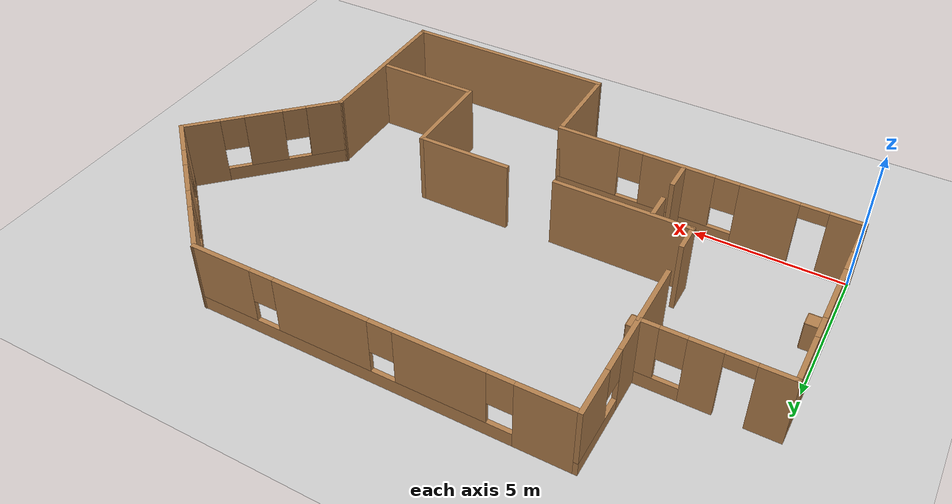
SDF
<sdf version="1.6">
 <world name="default">
  <light name="sun" type="directional">
   <pose>0 0 10 0 -0 0</pose>
   <diffuse>0.8 0.8 0.8 1</diffuse>
   <specular>0.2 0.2 0.2 1</specular>
   <attenuation>
    <range>1000</range>
    <constant>0.9</constant>
    <linear>0.01</linear>
    <quadratic>0.001</quadratic>
   </attenuation>
   <direction>-0.5 0.1 -0.9</direction>
  </light>
  <model name="ground_plane">
   <static>1</static>
   <link name="link">
    <collision name="collision">
     <geometry><plane><normal>0 0 1</normal><size>100 100</size></plane></geometry>
     <surface><friction><ode><mu>100</mu><mu2>50</mu2></ode></friction></surface>
    </collision>
    <visual name="visual">
     <cast_shadows>0</cast_shadows>
     <geometry><plane><normal>0 0 1</normal><size>100 100</size></plane></geometry>
     <material>
      <script><uri>file://media/materials/scripts/gazebo.material</uri><name>Gazebo/Grey</name></script>
     </material>
    </visual>
   </link>
  </model>
  <gravity>0 0 -9.8</gravity>
  <magnetic_field>6e-06 2.3e-05 -4.2e-05</magnetic_field>
  <atmosphere type="adiabatic"/>
  <physics name="default_physics" default="0" type="ode">
   <max_step_size>0.001</max_step_size>
   <real_time_factor>1</real_time_factor>
   <real_time_update_rate>1000</real_time_update_rate>
  </physics>
  <scene><ambient>0.4 0.4 0.4 1</ambient><background>0.7 0.7 0.7 1</background><shadows>1</shadows></scene>
  <spherical_coordinates>
   <surface_model>EARTH_WGS84</surface_model>
   <latitude_deg>0</latitude_deg>
   <longitude_deg>0</longitude_deg>
   <elevation>0</elevation>
   <heading_deg>0</heading_deg>
  </spherical_coordinates>
  <model name="buildingnl">
   <pose>10.5222 3.74051 0 0 -0 0</pose>
   <link name="Wall_0">
    <pose>-5.52221 -3.74051 0 0 -0 0</pose>
    <visual name="Wall_0_Visual_0">
     <pose>-4.51122 0 1.25 0 -0 0</pose>
     <geometry><box><size>1.12755 0.15 2.5</size></box></geometry>
     <material>
      <script><uri>file://media/materials/scripts/gazebo.material</uri><name>Gazebo/Wood</name></script>
      <ambient>1 1 1 1</ambient>
     </material>
     <meta><layer>0</layer></meta>
    </visual>
    <collision name="Wall_0_Collision_0">
     <geometry><box><size>1.12755 0.15 2.5</size></box></geometry>
     <pose>-4.51122 0 1.25 0 -0 0</pose>
    </collision>
    <visual name="Wall_0_Visual_1">
     <pose>-2.10052 0 1.25 0 -0 0</pose>
     <geometry><box><size>1.89386 0.15 2.5</size></box></geometry>
     <material>
      <script><uri>file://media/materials/scripts/gazebo.material</uri><name>Gazebo/Wood</name></script>
      <ambient>1 1 1 1</ambient>
     </material>
     <meta><layer>0</layer></meta>
    </visual>
    <collision name="Wall_0_Collision_1">
     <geometry><box><size>1.89386 0.15 2.5</size></box></geometry>
     <pose>-2.10052 0 1.25 0 -0 0</pose>
    </collision>
    <visual name="Wall_0_Visual_2">
     <pose>1.9607 0 0.25 0 -0 0</pose>
     <geometry><box><size>6.22859 0.15 0.5</size></box></geometry>
     <material>
      <script><uri>file://media/materials/scripts/gazebo.material</uri><name>Gazebo/Wood</name></script>
      <ambient>1 1 1 1</ambient>
     </material>
     <meta><layer>0</layer></meta>
    </visual>
    <collision name="Wall_0_Collision_2">
     <geometry><box><size>6.22859 0.15 0.5</size></box></geometry>
     <pose>1.9607 0 0.25 0 -0 0</pose>
    </collision>
    <visual name="Wall_0_Visual_3">
     <pose>0.855816 0 1.5 0 -0 0</pose>
     <geometry><box><size>2.41881 0.15 2</size></box></geometry>
     <material>
      <script><uri>file://media/materials/scripts/gazebo.material</uri><name>Gazebo/Wood</name></script>
      <ambient>1 1 1 1</ambient>
     </material>
     <meta><layer>0</layer></meta>
    </visual>
    <collision name="Wall_0_Collision_3">
     <geometry><box><size>2.41881 0.15 2</size></box></geometry>
     <pose>0.855816 0 1.5 0 -0 0</pose>
    </collision>
    <visual name="Wall_0_Visual_4">
     <pose>3.97011 0 1.5 0 -0 0</pose>
     <geometry><box><size>2.20978 0.15 2</size></box></geometry>
     <material>
      <script><uri>file://media/materials/scripts/gazebo.material</uri><name>Gazebo/Wood</name></script>
      <ambient>1 1 1 1</ambient>
     </material>
     <meta><layer>0</layer></meta>
    </visual>
    <collision name="Wall_0_Collision_4">
     <geometry><box><size>2.20978 0.15 2</size></box></geometry>
     <pose>3.97011 0 1.5 0 -0 0</pose>
    </collision>
    <visual name="Wall_0_Visual_5">
     <pose>-0.753592 0 1.9 0 -0 0</pose>
     <geometry><box><size>0.8 0.15 1.2</size></box></geometry>
     <material>
      <script><uri>file://media/materials/scripts/gazebo.material</uri><name>Gazebo/Wood</name></script>
      <ambient>1 1 1 1</ambient>
     </material>
     <meta><layer>0</layer></meta>
    </visual>
    <collision name="Wall_0_Collision_5">
     <geometry><box><size>0.8 0.15 1.2</size></box></geometry>
     <pose>-0.753592 0 1.9 0 -0 0</pose>
    </collision>
    <visual name="Wall_0_Visual_6">
     <pose>2.46522 0 1.9 0 -0 0</pose>
     <geometry><box><size>0.8 0.15 1.2</size></box></geometry>
     <material>
      <script><uri>file://media/materials/scripts/gazebo.material</uri><name>Gazebo/Wood</name></script>
      <ambient>1 1 1 1</ambient>
     </material>
     <meta><layer>0</layer></meta>
    </visual>
    <collision name="Wall_0_Collision_6">
     <geometry><box><size>0.8 0.15 1.2</size></box></geometry>
     <pose>2.46522 0 1.9 0 -0 0</pose>
    </collision>
    <visual name="Wall_0_Visual_7">
     <pose>-3.49745 0 2.25 0 -0 0</pose>
     <geometry><box><size>0.9 0.15 0.5</size></box></geometry>
     <material>
      <script><uri>file://media/materials/scripts/gazebo.material</uri><name>Gazebo/Wood</name></script>
      <ambient>1 1 1 1</ambient>
     </material>
     <meta><layer>0</layer></meta>
    </visual>
    <collision name="Wall_0_Collision_7">
     <geometry><box><size>0.9 0.15 0.5</size></box></geometry>
     <pose>-3.49745 0 2.25 0 -0 0</pose>
    </collision>
   </link>
   <link name="Wall_10">
    <collision name="Wall_10_Collision">
     <geometry><box><size>3.15 0.15 2.5</size></box></geometry>
     <pose>0 0 1.25 0 -0 0</pose>
    </collision>
    <visual name="Wall_10_Visual">
     <pose>0 0 1.25 0 -0 0</pose>
     <geometry><box><size>3.15 0.15 2.5</size></box></geometry>
     <material>
      <script><uri>file://media/materials/scripts/gazebo.material</uri><name>Gazebo/Wood</name></script>
      <ambient>1 1 1 1</ambient>
     </material>
     <meta><layer>0</layer></meta>
    </visual>
    <pose>-0.522209 -5.24051 0 0 -0 1.5708</pose>
   </link>
   <link name="Wall_14">
    <collision name="Wall_14_Collision">
     <geometry><box><size>3.25 0.15 2.5</size></box></geometry>
     <pose>0 0 1.25 0 -0 0</pose>
    </collision>
    <visual name="Wall_14_Visual">
     <pose>0 0 1.25 0 -0 0</pose>
     <geometry><box><size>3.25 0.15 2.5</size></box></geometry>
     <material>
      <script><uri>file://media/materials/scripts/gazebo.material</uri><name>Gazebo/Wood</name></script>
      <ambient>1 1 1 1</ambient>
     </material>
     <meta><layer>0</layer></meta>
    </visual>
    <pose>3.17779 -2.54051 0 0 0 -1.5708</pose>
   </link>
   <link name="Wall_15">
    <collision name="Wall_15_Collision">
     <geometry><box><size>3.5 0.15 2.5</size></box></geometry>
     <pose>0 0 1.25 0 -0 0</pose>
    </collision>
    <visual name="Wall_15_Visual">
     <pose>0 0 1.25 0 -0 0</pose>
     <geometry><box><size>3.5 0.15 2.5</size></box></geometry>
     <material>
      <script><uri>file://media/materials/scripts/gazebo.material</uri><name>Gazebo/Wood</name></script>
      <ambient>1 1 1 1</ambient>
     </material>
     <meta><layer>0</layer></meta>
    </visual>
    <pose>4.85279 -4.09051 0 0 -0 0</pose>
   </link>
   <link name="Wall_19">
    <collision name="Wall_19_Collision">
     <geometry><box><size>3.25 0.15 2.5</size></box></geometry>
     <pose>0 0 1.25 0 -0 0</pose>
    </collision>
    <visual name="Wall_19_Visual">
     <pose>0 0 1.25 0 -0 0</pose>
     <geometry><box><size>3.25 0.15 2.5</size></box></geometry>
     <material>
      <script><uri>file://media/materials/scripts/gazebo.material</uri><name>Gazebo/Wood</name></script>
      <ambient>1 1 1 1</ambient>
     </material>
     <meta><layer>0</layer></meta>
    </visual>
    <pose>1.62779 -0.990514 0 0 -0 3.14159</pose>
   </link>
   <link name="Wall_2">
    <pose>-10.5222 -0.315514 0 0 -0 1.5708</pose>
    <visual name="Wall_2_Visual_0">
     <pose>-2.76767 0 1.25 0 -0 0</pose>
     <geometry><box><size>1.46466 0.15 2.5</size></box></geometry>
     <material>
      <script><uri>file://media/materials/scripts/gazebo.material</uri><name>Gazebo/Wood</name></script>
      <ambient>1 1 1 1</ambient>
     </material>
     <meta><layer>0</layer></meta>
    </visual>
    <collision name="Wall_2_Collision_0">
     <geometry><box><size>1.46466 0.15 2.5</size></box></geometry>
     <pose>-2.76767 0 1.25 0 -0 0</pose>
    </collision>
    <visual name="Wall_2_Visual_1">
     <pose>0.732328 0 0.25 0 -0 0</pose>
     <geometry><box><size>5.53534 0.15 0.5</size></box></geometry>
     <material>
      <script><uri>file://media/materials/scripts/gazebo.material</uri><name>Gazebo/Wood</name></script>
      <ambient>1 1 1 1</ambient>
     </material>
     <meta><layer>0</layer></meta>
    </visual>
    <collision name="Wall_2_Collision_1">
     <geometry><box><size>5.53534 0.15 0.5</size></box></geometry>
     <pose>0.732328 0 0.25 0 -0 0</pose>
    </collision>
    <visual name="Wall_2_Visual_2">
     <pose>-0.154144 0 1.5 0 -0 0</pose>
     <geometry><box><size>2.1624 0.15 2</size></box></geometry>
     <material>
      <script><uri>file://media/materials/scripts/gazebo.material</uri><name>Gazebo/Wood</name></script>
      <ambient>1 1 1 1</ambient>
     </material>
     <meta><layer>0</layer></meta>
    </visual>
    <collision name="Wall_2_Collision_2">
     <geometry><box><size>2.1624 0.15 2</size></box></geometry>
     <pose>-0.154144 0 1.5 0 -0 0</pose>
    </collision>
    <visual name="Wall_2_Visual_3">
     <pose>2.61353 0 1.5 0 -0 0</pose>
     <geometry><box><size>1.77294 0.15 2</size></box></geometry>
     <material>
      <script><uri>file://media/materials/scripts/gazebo.material</uri><name>Gazebo/Wood</name></script>
      <ambient>1 1 1 1</ambient>
     </material>
     <meta><layer>0</layer></meta>
    </visual>
    <collision name="Wall_2_Collision_3">
     <geometry><box><size>1.77294 0.15 2</size></box></geometry>
     <pose>2.61353 0 1.5 0 -0 0</pose>
    </collision>
    <visual name="Wall_2_Visual_4">
     <pose>-1.63534 0 1.9 0 -0 0</pose>
     <geometry><box><size>0.8 0.15 1.2</size></box></geometry>
     <material>
      <script><uri>file://media/materials/scripts/gazebo.material</uri><name>Gazebo/Wood</name></script>
      <ambient>1 1 1 1</ambient>
     </material>
     <meta><layer>0</layer></meta>
    </visual>
    <collision name="Wall_2_Collision_4">
     <geometry><box><size>0.8 0.15 1.2</size></box></geometry>
     <pose>-1.63534 0 1.9 0 -0 0</pose>
    </collision>
    <visual name="Wall_2_Visual_5">
     <pose>1.32706 0 1.9 0 -0 0</pose>
     <geometry><box><size>0.8 0.15 1.2</size></box></geometry>
     <material>
      <script><uri>file://media/materials/scripts/gazebo.material</uri><name>Gazebo/Wood</name></script>
      <ambient>1 1 1 1</ambient>
     </material>
     <meta><layer>0</layer></meta>
    </visual>
    <collision name="Wall_2_Collision_5">
     <geometry><box><size>0.8 0.15 1.2</size></box></geometry>
     <pose>1.32706 0 1.9 0 -0 0</pose>
    </collision>
   </link>
   <link name="Wall_21">
    <collision name="Wall_21_Collision">
     <geometry><box><size>2.25 0.15 2.5</size></box></geometry>
     <pose>0 0 1.25 0 -0 0</pose>
    </collision>
    <visual name="Wall_21_Visual">
     <pose>0 0 1.25 0 -0 0</pose>
     <geometry><box><size>2.25 0.15 2.5</size></box></geometry>
     <material>
      <script><uri>file://media/materials/scripts/gazebo.material</uri><name>Gazebo/Wood</name></script>
      <ambient>1 1 1 1</ambient>
     </material>
     <meta><layer>0</layer></meta>
    </visual>
    <pose>-6.17221 2.05949 0 0 0 -1.5708</pose>
   </link>
   <link name="Wall_23">
    <collision name="Wall_23_Collision">
     <geometry><box><size>4.62098 0.15 2.5</size></box></geometry>
     <pose>0 0 1.25 0 -0 0</pose>
    </collision>
    <visual name="Wall_23_Visual">
     <pose>0 0 1.25 0 -0 0</pose>
     <geometry><box><size>4.62098 0.15 2.5</size></box></geometry>
     <material>
      <script><uri>file://media/materials/scripts/gazebo.material</uri><name>Gazebo/Wood</name></script>
      <ambient>1 1 1 1</ambient>
     </material>
     <meta><layer>0</layer></meta>
    </visual>
    <pose>-3.85737 -1.07342 0 0 -0 3.14159</pose>
   </link>
   <link name="Wall_24">
    <collision name="Wall_24_Collision">
     <geometry><box><size>1 0.15 2.5</size></box></geometry>
     <pose>0 0 1.25 0 -0 0</pose>
    </collision>
    <visual name="Wall_24_Visual">
     <pose>0 0 1.25 0 -0 0</pose>
     <geometry><box><size>1 0.15 2.5</size></box></geometry>
     <material>
      <script><uri>file://media/materials/scripts/gazebo.material</uri><name>Gazebo/Wood</name></script>
      <ambient>1 1 1 1</ambient>
     </material>
     <meta><layer>0</layer></meta>
    </visual>
    <pose>-6.12311 -0.648424 0 0 -0 1.5708</pose>
   </link>
   <link name="Wall_26">
    <collision name="Wall_26_Collision">
     <geometry><box><size>1 0.15 2.5</size></box></geometry>
     <pose>0 0 1.25 0 -0 0</pose>
    </collision>
    <visual name="Wall_26_Visual">
     <pose>0 0 1.25 0 -0 0</pose>
     <geometry><box><size>1 0.15 2.5</size></box></geometry>
     <material>
      <script><uri>file://media/materials/scripts/gazebo.material</uri><name>Gazebo/Wood</name></script>
      <ambient>1 1 1 1</ambient>
     </material>
     <meta><layer>0</layer></meta>
    </visual>
    <pose>-4.84005 -1.49842 0 0 0 -1.5708</pose>
   </link>
   <link name="Wall_28">
    <collision name="Wall_28_Collision">
     <geometry><box><size>1 0.15 2.5</size></box></geometry>
     <pose>0 0 1.25 0 -0 0</pose>
    </collision>
    <visual name="Wall_28_Visual">
     <pose>0 0 1.25 0 -0 0</pose>
     <geometry><box><size>1 0.15 2.5</size></box></geometry>
     <material>
      <script><uri>file://media/materials/scripts/gazebo.material</uri><name>Gazebo/Wood</name></script>
      <ambient>1 1 1 1</ambient>
     </material>
     <meta><layer>0</layer></meta>
    </visual>
    <pose>-4.84005 -3.19842 0 0 0 -1.5708</pose>
   </link>
   <link name="Wall_3">
    <pose>-8.34721 3.10949 0 0 -0 0</pose>
    <visual name="Wall_3_Visual_0">
     <pose>-1.69779 0 1.25 0 -0 0</pose>
     <geometry><box><size>1.10442 0.15 2.5</size></box></geometry>
     <material>
      <script><uri>file://media/materials/scripts/gazebo.material</uri><name>Gazebo/Wood</name></script>
      <ambient>1 1 1 1</ambient>
     </material>
     <meta><layer>0</layer></meta>
    </visual>
    <collision name="Wall_3_Collision_0">
     <geometry><box><size>1.10442 0.15 2.5</size></box></geometry>
     <pose>-1.69779 0 1.25 0 -0 0</pose>
    </collision>
    <visual name="Wall_3_Visual_1">
     <pose>0.261634 0 1.25 0 -0 0</pose>
     <geometry><box><size>1.01443 0.15 2.5</size></box></geometry>
     <material>
      <script><uri>file://media/materials/scripts/gazebo.material</uri><name>Gazebo/Wood</name></script>
      <ambient>1 1 1 1</ambient>
     </material>
     <meta><layer>0</layer></meta>
    </visual>
    <collision name="Wall_3_Collision_1">
     <geometry><box><size>1.01443 0.15 2.5</size></box></geometry>
     <pose>0.261634 0 1.25 0 -0 0</pose>
    </collision>
    <visual name="Wall_3_Visual_2">
     <pose>1.50942 0 0.25 0 -0 0</pose>
     <geometry><box><size>1.48115 0.15 0.5</size></box></geometry>
     <material>
      <script><uri>file://media/materials/scripts/gazebo.material</uri><name>Gazebo/Wood</name></script>
      <ambient>1 1 1 1</ambient>
     </material>
     <meta><layer>0</layer></meta>
    </visual>
    <collision name="Wall_3_Collision_2">
     <geometry><box><size>1.48115 0.15 0.5</size></box></geometry>
     <pose>1.50942 0 0.25 0 -0 0</pose>
    </collision>
    <visual name="Wall_3_Visual_3">
     <pose>1.90942 0 1.5 0 -0 0</pose>
     <geometry><box><size>0.681152 0.15 2</size></box></geometry>
     <material>
      <script><uri>file://media/materials/scripts/gazebo.material</uri><name>Gazebo/Wood</name></script>
      <ambient>1 1 1 1</ambient>
     </material>
     <meta><layer>0</layer></meta>
    </visual>
    <collision name="Wall_3_Collision_3">
     <geometry><box><size>0.681152 0.15 2</size></box></geometry>
     <pose>1.90942 0 1.5 0 -0 0</pose>
    </collision>
    <visual name="Wall_3_Visual_4">
     <pose>1.16885 0 1.9 0 -0 0</pose>
     <geometry><box><size>0.8 0.15 1.2</size></box></geometry>
     <material>
      <script><uri>file://media/materials/scripts/gazebo.material</uri><name>Gazebo/Wood</name></script>
      <ambient>1 1 1 1</ambient>
     </material>
     <meta><layer>0</layer></meta>
    </visual>
    <collision name="Wall_3_Collision_4">
     <geometry><box><size>0.8 0.15 1.2</size></box></geometry>
     <pose>1.16885 0 1.9 0 -0 0</pose>
    </collision>
    <visual name="Wall_3_Visual_5">
     <pose>-0.695581 0 2.25 0 -0 0</pose>
     <geometry><box><size>0.9 0.15 0.5</size></box></geometry>
     <material>
      <script><uri>file://media/materials/scripts/gazebo.material</uri><name>Gazebo/Wood</name></script>
      <ambient>1 1 1 1</ambient>
     </material>
     <meta><layer>0</layer></meta>
    </visual>
    <collision name="Wall_3_Collision_5">
     <geometry><box><size>0.9 0.15 0.5</size></box></geometry>
     <pose>-0.695581 0 2.25 0 -0 0</pose>
    </collision>
   </link>
   <link name="Wall_4">
    <pose>-6.17221 4.90949 0 0 -0 1.5708</pose>
    <visual name="Wall_4_Visual_0">
     <pose>-1.21781 0 1.25 0 -0 0</pose>
     <geometry><box><size>1.31438 0.15 2.5</size></box></geometry>
     <material>
      <script><uri>file://media/materials/scripts/gazebo.material</uri><name>Gazebo/Wood</name></script>
      <ambient>1 1 1 1</ambient>
     </material>
     <meta><layer>0</layer></meta>
    </visual>
    <collision name="Wall_4_Collision_0">
     <geometry><box><size>1.31438 0.15 2.5</size></box></geometry>
     <pose>-1.21781 0 1.25 0 -0 0</pose>
    </collision>
    <visual name="Wall_4_Visual_1">
     <pose>0.657189 0 0.25 0 -0 0</pose>
     <geometry><box><size>2.43562 0.15 0.5</size></box></geometry>
     <material>
      <script><uri>file://media/materials/scripts/gazebo.material</uri><name>Gazebo/Wood</name></script>
      <ambient>1 1 1 1</ambient>
     </material>
     <meta><layer>0</layer></meta>
    </visual>
    <collision name="Wall_4_Collision_1">
     <geometry><box><size>2.43562 0.15 0.5</size></box></geometry>
     <pose>0.657189 0 0.25 0 -0 0</pose>
    </collision>
    <visual name="Wall_4_Visual_2">
     <pose>1.05719 0 1.5 0 -0 0</pose>
     <geometry><box><size>1.63562 0.15 2</size></box></geometry>
     <material>
      <script><uri>file://media/materials/scripts/gazebo.material</uri><name>Gazebo/Wood</name></script>
      <ambient>1 1 1 1</ambient>
     </material>
     <meta><layer>0</layer></meta>
    </visual>
    <collision name="Wall_4_Collision_2">
     <geometry><box><size>1.63562 0.15 2</size></box></geometry>
     <pose>1.05719 0 1.5 0 -0 0</pose>
    </collision>
    <visual name="Wall_4_Visual_3">
     <pose>-0.160623 0 1.9 0 -0 0</pose>
     <geometry><box><size>0.8 0.15 1.2</size></box></geometry>
     <material>
      <script><uri>file://media/materials/scripts/gazebo.material</uri><name>Gazebo/Wood</name></script>
      <ambient>1 1 1 1</ambient>
     </material>
     <meta><layer>0</layer></meta>
    </visual>
    <collision name="Wall_4_Collision_3">
     <geometry><box><size>0.8 0.15 1.2</size></box></geometry>
     <pose>-0.160623 0 1.9 0 -0 0</pose>
    </collision>
   </link>
   <link name="Wall_5">
    <pose>0.00279 6.70948 0 0 -0 0</pose>
    <visual name="Wall_5_Visual_0">
     <pose>-5.28638 0 1.25 0 -0 0</pose>
     <geometry><box><size>1.92725 0.15 2.5</size></box></geometry>
     <material>
      <script><uri>file://media/materials/scripts/gazebo.material</uri><name>Gazebo/Wood</name></script>
      <ambient>1 1 1 1</ambient>
     </material>
     <meta><layer>0</layer></meta>
    </visual>
    <collision name="Wall_5_Collision_0">
     <geometry><box><size>1.92725 0.15 2.5</size></box></geometry>
     <pose>-5.28638 0 1.25 0 -0 0</pose>
    </collision>
    <visual name="Wall_5_Visual_1">
     <pose>0.963624 0 0.25 0 -0 0</pose>
     <geometry><box><size>10.5728 0.15 0.5</size></box></geometry>
     <material>
      <script><uri>file://media/materials/scripts/gazebo.material</uri><name>Gazebo/Wood</name></script>
      <ambient>1 1 1 1</ambient>
     </material>
     <meta><layer>0</layer></meta>
    </visual>
    <collision name="Wall_5_Collision_1">
     <geometry><box><size>10.5728 0.15 0.5</size></box></geometry>
     <pose>0.963624 0 0.25 0 -0 0</pose>
    </collision>
    <visual name="Wall_5_Visual_2">
     <pose>-2.09242 0 1.5 0 -0 0</pose>
     <geometry><box><size>2.86067 0.15 2</size></box></geometry>
     <material>
      <script><uri>file://media/materials/scripts/gazebo.material</uri><name>Gazebo/Wood</name></script>
      <ambient>1 1 1 1</ambient>
     </material>
     <meta><layer>0</layer></meta>
    </visual>
    <collision name="Wall_5_Collision_2">
     <geometry><box><size>2.86067 0.15 2</size></box></geometry>
     <pose>-2.09242 0 1.5 0 -0 0</pose>
    </collision>
    <visual name="Wall_5_Visual_3">
     <pose>1.72916 0 1.5 0 -0 0</pose>
     <geometry><box><size>3.18249 0.15 2</size></box></geometry>
     <material>
      <script><uri>file://media/materials/scripts/gazebo.material</uri><name>Gazebo/Wood</name></script>
      <ambient>1 1 1 1</ambient>
     </material>
     <meta><layer>0</layer></meta>
    </visual>
    <collision name="Wall_5_Collision_3">
     <geometry><box><size>3.18249 0.15 2</size></box></geometry>
     <pose>1.72916 0 1.5 0 -0 0</pose>
    </collision>
    <visual name="Wall_5_Visual_4">
     <pose>5.1852 0 1.5 0 -0 0</pose>
     <geometry><box><size>2.1296 0.15 2</size></box></geometry>
     <material>
      <script><uri>file://media/materials/scripts/gazebo.material</uri><name>Gazebo/Wood</name></script>
      <ambient>1 1 1 1</ambient>
     </material>
     <meta><layer>0</layer></meta>
    </visual>
    <collision name="Wall_5_Collision_4">
     <geometry><box><size>2.1296 0.15 2</size></box></geometry>
     <pose>5.1852 0 1.5 0 -0 0</pose>
    </collision>
    <visual name="Wall_5_Visual_5">
     <pose>-3.92275 0 1.9 0 -0 0</pose>
     <geometry><box><size>0.8 0.15 1.2</size></box></geometry>
     <material>
      <script><uri>file://media/materials/scripts/gazebo.material</uri><name>Gazebo/Wood</name></script>
      <ambient>1 1 1 1</ambient>
     </material>
     <meta><layer>0</layer></meta>
    </visual>
    <collision name="Wall_5_Collision_5">
     <geometry><box><size>0.8 0.15 1.2</size></box></geometry>
     <pose>-3.92275 0 1.9 0 -0 0</pose>
    </collision>
    <visual name="Wall_5_Visual_6">
     <pose>-0.262083 0 1.9 0 -0 0</pose>
     <geometry><box><size>0.8 0.15 1.2</size></box></geometry>
     <material>
      <script><uri>file://media/materials/scripts/gazebo.material</uri><name>Gazebo/Wood</name></script>
      <ambient>1 1 1 1</ambient>
     </material>
     <meta><layer>0</layer></meta>
    </visual>
    <collision name="Wall_5_Collision_6">
     <geometry><box><size>0.8 0.15 1.2</size></box></geometry>
     <pose>-0.262083 0 1.9 0 -0 0</pose>
    </collision>
    <visual name="Wall_5_Visual_7">
     <pose>3.7204 0 1.9 0 -0 0</pose>
     <geometry><box><size>0.8 0.15 1.2</size></box></geometry>
     <material>
      <script><uri>file://media/materials/scripts/gazebo.material</uri><name>Gazebo/Wood</name></script>
      <ambient>1 1 1 1</ambient>
     </material>
     <meta><layer>0</layer></meta>
    </visual>
    <collision name="Wall_5_Collision_7">
     <geometry><box><size>0.8 0.15 1.2</size></box></geometry>
     <pose>3.7204 0 1.9 0 -0 0</pose>
    </collision>
   </link>
   <link name="Wall_6">
    <pose>8.33447 4.55281 0 0 0 -0.785398</pose>
    <visual name="Wall_6_Visual_0">
     <pose>-2.18213 0 1.25 0 -0 0</pose>
     <geometry><box><size>1.88575 0.15 2.5</size></box></geometry>
     <material>
      <script><uri>file://media/materials/scripts/gazebo.material</uri><name>Gazebo/Wood</name></script>
      <ambient>1 1 1 1</ambient>
     </material>
     <meta><layer>0</layer></meta>
    </visual>
    <collision name="Wall_6_Collision_0">
     <geometry><box><size>1.88575 0.15 2.5</size></box></geometry>
     <pose>-2.18213 0 1.25 0 -0 0</pose>
    </collision>
    <visual name="Wall_6_Visual_1">
     <pose>0.942874 0 0.25 0 -0 0</pose>
     <geometry><box><size>4.36425 0.15 0.5</size></box></geometry>
     <material>
      <script><uri>file://media/materials/scripts/gazebo.material</uri><name>Gazebo/Wood</name></script>
      <ambient>1 1 1 1</ambient>
     </material>
     <meta><layer>0</layer></meta>
    </visual>
    <collision name="Wall_6_Collision_1">
     <geometry><box><size>4.36425 0.15 0.5</size></box></geometry>
     <pose>0.942874 0 0.25 0 -0 0</pose>
    </collision>
    <visual name="Wall_6_Visual_2">
     <pose>0.227431 0 1.5 0 -0 0</pose>
     <geometry><box><size>1.33337 0.15 2</size></box></geometry>
     <material>
      <script><uri>file://media/materials/scripts/gazebo.material</uri><name>Gazebo/Wood</name></script>
      <ambient>1 1 1 1</ambient>
     </material>
     <meta><layer>0</layer></meta>
    </visual>
    <collision name="Wall_6_Collision_2">
     <geometry><box><size>1.33337 0.15 2</size></box></geometry>
     <pose>0.227431 0 1.5 0 -0 0</pose>
    </collision>
    <visual name="Wall_6_Visual_3">
     <pose>2.40956 0 1.5 0 -0 0</pose>
     <geometry><box><size>1.43088 0.15 2</size></box></geometry>
     <material>
      <script><uri>file://media/materials/scripts/gazebo.material</uri><name>Gazebo/Wood</name></script>
      <ambient>1 1 1 1</ambient>
     </material>
     <meta><layer>0</layer></meta>
    </visual>
    <collision name="Wall_6_Collision_3">
     <geometry><box><size>1.43088 0.15 2</size></box></geometry>
     <pose>2.40956 0 1.5 0 -0 0</pose>
    </collision>
    <visual name="Wall_6_Visual_4">
     <pose>-0.839252 0 1.9 0 -0 0</pose>
     <geometry><box><size>0.8 0.15 1.2</size></box></geometry>
     <material>
      <script><uri>file://media/materials/scripts/gazebo.material</uri><name>Gazebo/Wood</name></script>
      <ambient>1 1 1 1</ambient>
     </material>
     <meta><layer>0</layer></meta>
    </visual>
    <collision name="Wall_6_Collision_4">
     <geometry><box><size>0.8 0.15 1.2</size></box></geometry>
     <pose>-0.839252 0 1.9 0 -0 0</pose>
    </collision>
    <visual name="Wall_6_Visual_5">
     <pose>1.29411 0 1.9 0 -0 0</pose>
     <geometry><box><size>0.8 0.15 1.2</size></box></geometry>
     <material>
      <script><uri>file://media/materials/scripts/gazebo.material</uri><name>Gazebo/Wood</name></script>
      <ambient>1 1 1 1</ambient>
     </material>
     <meta><layer>0</layer></meta>
    </visual>
    <collision name="Wall_6_Collision_5">
     <geometry><box><size>0.8 0.15 1.2</size></box></geometry>
     <pose>1.29411 0 1.9 0 -0 0</pose>
    </collision>
   </link>
   <link name="Wall_7">
    <pose>8.59963 0.504624 0 0 0 -2.35619</pose>
    <visual name="Wall_7_Visual_0">
     <pose>-2.07683 0 1.25 0 -0 0</pose>
     <geometry><box><size>1.34634 0.15 2.5</size></box></geometry>
     <material>
      <script><uri>file://media/materials/scripts/gazebo.material</uri><name>Gazebo/Wood</name></script>
      <ambient>1 1 1 1</ambient>
     </material>
     <meta><layer>0</layer></meta>
    </visual>
    <collision name="Wall_7_Collision_0">
     <geometry><box><size>1.34634 0.15 2.5</size></box></geometry>
     <pose>-2.07683 0 1.25 0 -0 0</pose>
    </collision>
    <visual name="Wall_7_Visual_1">
     <pose>0.673172 0 0.25 0 -0 0</pose>
     <geometry><box><size>4.15366 0.15 0.5</size></box></geometry>
     <material>
      <script><uri>file://media/materials/scripts/gazebo.material</uri><name>Gazebo/Wood</name></script>
      <ambient>1 1 1 1</ambient>
     </material>
     <meta><layer>0</layer></meta>
    </visual>
    <collision name="Wall_7_Collision_1">
     <geometry><box><size>4.15366 0.15 0.5</size></box></geometry>
     <pose>0.673172 0 0.25 0 -0 0</pose>
    </collision>
    <visual name="Wall_7_Visual_2">
     <pose>0.034581 0 1.5 0 -0 0</pose>
     <geometry><box><size>1.27648 0.15 2</size></box></geometry>
     <material>
      <script><uri>file://media/materials/scripts/gazebo.material</uri><name>Gazebo/Wood</name></script>
      <ambient>1 1 1 1</ambient>
     </material>
     <meta><layer>0</layer></meta>
    </visual>
    <collision name="Wall_7_Collision_2">
     <geometry><box><size>1.27648 0.15 2</size></box></geometry>
     <pose>0.034581 0 1.5 0 -0 0</pose>
    </collision>
    <visual name="Wall_7_Visual_3">
     <pose>2.11141 0 1.5 0 -0 0</pose>
     <geometry><box><size>1.27718 0.15 2</size></box></geometry>
     <material>
      <script><uri>file://media/materials/scripts/gazebo.material</uri><name>Gazebo/Wood</name></script>
      <ambient>1 1 1 1</ambient>
     </material>
     <meta><layer>0</layer></meta>
    </visual>
    <collision name="Wall_7_Collision_3">
     <geometry><box><size>1.27718 0.15 2</size></box></geometry>
     <pose>2.11141 0 1.5 0 -0 0</pose>
    </collision>
    <visual name="Wall_7_Visual_4">
     <pose>-1.00366 0 1.9 0 -0 0</pose>
     <geometry><box><size>0.8 0.15 1.2</size></box></geometry>
     <material>
      <script><uri>file://media/materials/scripts/gazebo.material</uri><name>Gazebo/Wood</name></script>
      <ambient>1 1 1 1</ambient>
     </material>
     <meta><layer>0</layer></meta>
    </visual>
    <collision name="Wall_7_Collision_4">
     <geometry><box><size>0.8 0.15 1.2</size></box></geometry>
     <pose>-1.00366 0 1.9 0 -0 0</pose>
    </collision>
    <visual name="Wall_7_Visual_5">
     <pose>1.07282 0 1.9 0 -0 0</pose>
     <geometry><box><size>0.8 0.15 1.2</size></box></geometry>
     <material>
      <script><uri>file://media/materials/scripts/gazebo.material</uri><name>Gazebo/Wood</name></script>
      <ambient>1 1 1 1</ambient>
     </material>
     <meta><layer>0</layer></meta>
    </visual>
    <collision name="Wall_7_Collision_5">
     <geometry><box><size>0.8 0.15 1.2</size></box></geometry>
     <pose>1.07282 0 1.9 0 -0 0</pose>
    </collision>
   </link>
   <link name="Wall_8">
    <collision name="Wall_8_Collision">
     <geometry><box><size>5.5 0.15 2.5</size></box></geometry>
     <pose>0 0 1.25 0 -0 0</pose>
    </collision>
    <visual name="Wall_8_Visual">
     <pose>0 0 1.25 0 -0 0</pose>
     <geometry><box><size>5.5 0.15 2.5</size></box></geometry>
     <material>
      <script><uri>file://media/materials/scripts/gazebo.material</uri><name>Gazebo/Wood</name></script>
      <ambient>1 1 1 1</ambient>
     </material>
     <meta><layer>0</layer></meta>
    </visual>
    <pose>6.70812 -4.06189 0 0 0 -1.5708</pose>
   </link>
   <link name="Wall_9">
    <collision name="Wall_9_Collision">
     <geometry><box><size>7.38033 0.15 2.5</size></box></geometry>
     <pose>0 0 1.25 0 -0 0</pose>
    </collision>
    <visual name="Wall_9_Visual">
     <pose>0 0 1.25 0 -0 0</pose>
     <geometry><box><size>7.38033 0.15 2.5</size></box></geometry>
     <material>
      <script><uri>file://media/materials/scripts/gazebo.material</uri><name>Gazebo/Wood</name></script>
      <ambient>1 1 1 1</ambient>
     </material>
     <meta><layer>0</layer></meta>
    </visual>
    <pose>3.09295 -6.7387 0 0 0 -3.14109</pose>
   </link>
   <static>1</static>
  </model>
  <model name="bookshelf">
   <static>1</static>
   <link name="link">
    <inertial><mass>1</mass></inertial>
    <collision name="back">
     <pose>0 0.005 0.6 0 -0 0</pose>
     <geometry><box><size>0.9 0.01 1.2</size></box></geometry>
    </collision>
    <visual name="visual1">
     <pose>0 0.005 0.6 0 -0 0</pose>
     <geometry><box><size>0.9 0.01 1.2</size></box></geometry>
     <material>
      <script><uri>file://media/materials/scripts/gazebo.material</uri><name>Gazebo/Wood</name></script>
     </material>
    </visual>
    <collision name="left_side">
     <pose>0.45 -0.195 0.6 0 -0 0</pose>
     <geometry><box><size>0.02 0.4 1.2</size></box></geometry>
    </collision>
    <visual name="visual2">
     <pose>0.45 -0.195 0.6 0 -0 0</pose>
     <geometry><box><size>0.02 0.4 1.2</size></box></geometry>
     <material>
      <script><uri>file://media/materials/scripts/gazebo.material</uri><name>Gazebo/Wood</name></script>
     </material>
    </visual>
    <collision name="right_side">
     <pose>-0.45 -0.195 0.6 0 -0 0</pose>
     <geometry><box><size>0.02 0.4 1.2</size></box></geometry>
    </collision>
    <visual name="visual3">
     <pose>-0.45 -0.195 0.6 0 -0 0</pose>
     <geometry><box><size>0.02 0.4 1.2</size></box></geometry>
     <material>
      <script><uri>file://media/materials/scripts/gazebo.material</uri><name>Gazebo/Wood</name></script>
     </material>
    </visual>
    <collision name="bottom">
     <pose>0 -0.195 0.03 0 -0 0</pose>
     <geometry><box><size>0.88 0.4 0.06</size></box></geometry>
    </collision>
    <visual name="visual4">
     <pose>0 -0.195 0.03 0 -0 0</pose>
     <geometry><box><size>0.88 0.4 0.06</size></box></geometry>
     <material>
      <script><uri>file://media/materials/scripts/gazebo.material</uri><name>Gazebo/Wood</name></script>
     </material>
    </visual>
    <collision name="top">
     <pose>0 -0.195 1.19 0 -0 0</pose>
     <geometry><box><size>0.88 0.4 0.02</size></box></geometry>
    </collision>
    <visual name="visual5">
     <pose>0 -0.195 1.19 0 -0 0</pose>
     <geometry><box><size>0.88 0.4 0.02</size></box></geometry>
     <material>
      <script><uri>file://media/materials/scripts/gazebo.material</uri><name>Gazebo/Wood</name></script>
     </material>
    </visual>
    <collision name="low_shelf">
     <pose>0 -0.195 0.43 0 -0 0</pose>
     <geometry><box><size>0.88 0.4 0.02</size></box></geometry>
    </collision>
    <visual name="visual6">
     <pose>0 -0.195 0.43 0 -0 0</pose>
     <geometry><box><size>0.88 0.4 0.02</size></box></geometry>
     <material>
      <script><uri>file://media/materials/scripts/gazebo.material</uri><name>Gazebo/Wood</name></script>
     </material>
    </visual>
    <collision name="high_shelf">
     <pose>0 -0.195 0.8 0 -0 0</pose>
     <geometry><box><size>0.88 0.4 0.02</size></box></geometry>
    </collision>
    <visual name="visual7">
     <pose>0 -0.195 0.8 0 -0 0</pose>
     <geometry><box><size>0.88 0.4 0.02</size></box></geometry>
     <material>
      <script><uri>file://media/materials/scripts/gazebo.material</uri><name>Gazebo/Wood</name></script>
     </material>
    </visual>
   </link>
   <pose>15.6374 10.3638 0 0 -0 0</pose>
  </model>
  <model name="trisphere_cycle">
   <link name="frame">
    <pose>-0.408559 0 0.385023 0 -0.522021 0</pose>
    <inertial>
     <mass>10</mass>
     <inertia><ixx>0.228</ixx><iyy>0.743521</iyy><izz>0.965521</izz><ixy>0</ixy><ixz>0</ixz><iyz>0</iyz></inertia>
    </inertial>
    <collision name="axle_collision">
     <pose>-0.471335 0 0 1.5708 -0 0</pose>
     <geometry><cylinder><length>1.03923</length><radius>0.03</radius></cylinder></geometry>
    </collision>
    <visual name="axle_visual">
     <pose>-0.471335 0 0 1.5708 -0 0</pose>
     <geometry><cylinder><length>1.03923</length><radius>0.03</radius></cylinder></geometry>
     <material>
      <script><uri>file://media/materials/scripts/gazebo.material</uri><name>Gazebo/Grey</name></script>
     </material>
    </visual>
    <collision name="frame_left_collision">
     <pose>0 0.171552 0 -2.79253 1.57079 3.14159</pose>
     <geometry><cylinder><length>1.00317</length><radius>0.03</radius></cylinder></geometry>
    </collision>
    <visual name="frame_left_visual">
     <pose>0 0.171552 0 -2.79253 1.57079 3.14159</pose>
     <geometry><cylinder><length>1.00317</length><radius>0.03</radius></cylinder></geometry>
     <material>
      <script><uri>file://media/materials/scripts/gazebo.material</uri><name>Gazebo/Grey</name></script>
     </material>
    </visual>
    <collision name="frame_right_collision">
     <pose>0 -0.171552 0 2.79253 1.57079 -3.14159</pose>
     <geometry><cylinder><length>1.00317</length><radius>0.03</radius></cylinder></geometry>
    </collision>
    <visual name="frame_right_visual">
     <pose>0 -0.171552 0 2.79253 1.57079 -3.14159</pose>
     <geometry><cylinder><length>1.00317</length><radius>0.03</radius></cylinder></geometry>
     <material>
      <script><uri>file://media/materials/scripts/gazebo.material</uri><name>Gazebo/Grey</name></script>
     </material>
    </visual>
   </link>
   <link name="fork">
    <pose>0.041441 0 0.385023 0 -0.174533 0</pose>
    <inertial>
     <mass>3</mass>
     <inertia>
      <ixx>0.158203</ixx>
      <iyy>0.0583594</iyy>
      <izz>0.102656</izz>
      <ixy>0</ixy>
      <ixz>0</ixz>
      <iyz>0</iyz>
     </inertia>
    </inertial>
    <collision name="handlebars_collision">
     <pose>0 0 0.397748 1.5708 -0 0</pose>
     <geometry><cylinder><length>0.636396</length><radius>0.0375</radius></cylinder></geometry>
    </collision>
    <visual name="handlebars_visual">
     <pose>0 0 0.397748 1.5708 -0 0</pose>
     <geometry><cylinder><length>0.636396</length><radius>0.0375</radius></cylinder></geometry>
     <material>
      <script><uri>file://media/materials/scripts/gazebo.material</uri><name>Gazebo/Grey</name></script>
     </material>
    </visual>
    <collision name="headtube_collision">
     <pose>0 0 0.238649 0 -0 0</pose>
     <geometry><cylinder><length>0.318198</length><radius>0.0375</radius></cylinder></geometry>
    </collision>
    <visual name="headtube_visual">
     <pose>0 0 0.238649 0 -0 0</pose>
     <geometry><cylinder><length>0.318198</length><radius>0.0375</radius></cylinder></geometry>
     <material>
      <script><uri>file://media/materials/scripts/gazebo.material</uri><name>Gazebo/Grey</name></script>
     </material>
    </visual>
    <collision name="spindle_collision">
     <pose>0 0 -0.238649 1.5708 -0 0</pose>
     <geometry><cylinder><length>0.636396</length><radius>0.015</radius></cylinder></geometry>
    </collision>
    <visual name="spindle_visual">
     <pose>0 0 -0.238649 1.5708 -0 0</pose>
     <geometry><cylinder><length>0.636396</length><radius>0.015</radius></cylinder></geometry>
     <material>
      <script><uri>file://media/materials/scripts/gazebo.material</uri><name>Gazebo/Grey</name></script>
     </material>
    </visual>
    <collision name="fork_left_collision">
     <pose>0 0.159099 -0.07955 0.785398 -0 0</pose>
     <geometry><cylinder><length>0.45</length><radius>0.0375</radius></cylinder></geometry>
    </collision>
    <visual name="fork_left_visual">
     <pose>0 0.159099 -0.07955 0.785398 -0 0</pose>
     <geometry><cylinder><length>0.45</length><radius>0.0375</radius></cylinder></geometry>
     <material>
      <script><uri>file://media/materials/scripts/gazebo.material</uri><name>Gazebo/Grey</name></script>
     </material>
    </visual>
    <collision name="fork_right_collision">
     <pose>0 -0.159099 -0.07955 -0.785398 0 0</pose>
     <geometry><cylinder><length>0.45</length><radius>0.0375</radius></cylinder></geometry>
    </collision>
    <visual name="fork_right_visual">
     <pose>0 -0.159099 -0.07955 -0.785398 0 0</pose>
     <geometry><cylinder><length>0.45</length><radius>0.0375</radius></cylinder></geometry>
     <material>
      <script><uri>file://media/materials/scripts/gazebo.material</uri><name>Gazebo/Grey</name></script>
     </material>
    </visual>
   </link>
   <link name="wheel_front">
    <pose>0.082882 0 0.15 0 -0 0</pose>
    <inertial>
     <mass>0.5</mass>
     <inertia><ixx>0.0045</ixx><iyy>0.0045</iyy><izz>0.0045</izz><ixy>0</ixy><ixz>0</ixz><iyz>0</iyz></inertia>
    </inertial>
    <collision name="collision">
     <geometry><sphere><radius>0.15</radius></sphere></geometry>
     <surface><contact><ode><kp>1e+08</kp><kd>1</kd><min_depth>0.0005</min_depth></ode></contact></surface>
    </collision>
    <visual name="visual">
     <geometry><sphere><radius>0.15</radius></sphere></geometry>
     <material>
      <script><uri>file://media/materials/scripts/gazebo.material</uri><name>Gazebo/Black</name></script>
     </material>
    </visual>
   </link>
   <joint name="wheel_front_steer" type="revolute">
    <parent>frame</parent>
    <child>fork</child>
    <axis>
     <xyz>0 0 1</xyz>
     <limit><lower>-0.959931</lower><upper>0.959931</upper></limit>
     <use_parent_model_frame>0</use_parent_model_frame>
     <dynamics><spring_reference>0</spring_reference><spring_stiffness>0</spring_stiffness></dynamics>
    </axis>
   </joint>
   <joint name="wheel_front_spin" type="revolute">
    <parent>fork</parent>
    <child>wheel_front</child>
    <axis>
     <xyz>0 1 0</xyz>
     <use_parent_model_frame>0</use_parent_model_frame>
     <limit><lower>-1e+16</lower><upper>1e+16</upper></limit>
     <dynamics><spring_reference>0</spring_reference><spring_stiffness>0</spring_stiffness></dynamics>
    </axis>
   </joint>
   <link name="wheel_rear_left">
    <pose>-0.817118 0.519615 0.15 0 -0 0</pose>
    <inertial>
     <mass>0.5</mass>
     <inertia><ixx>0.0045</ixx><iyy>0.0045</iyy><izz>0.0045</izz><ixy>0</ixy><ixz>0</ixz><iyz>0</iyz></inertia>
    </inertial>
    <collision name="collision">
     <geometry><sphere><radius>0.15</radius></sphere></geometry>
     <surface><contact><ode><kp>1e+08</kp><kd>1</kd><min_depth>0.0005</min_depth></ode></contact></surface>
    </collision>
    <visual name="visual">
     <geometry><sphere><radius>0.15</radius></sphere></geometry>
     <material>
      <script><uri>file://media/materials/scripts/gazebo.material</uri><name>Gazebo/Black</name></script>
     </material>
    </visual>
   </link>
   <joint name="wheel_rear_left_spin" type="revolute">
    <parent>frame</parent>
    <child>wheel_rear_left</child>
    <axis>
     <xyz>0 1 0</xyz>
     <use_parent_model_frame>0</use_parent_model_frame>
     <limit><lower>-1e+16</lower><upper>1e+16</upper></limit>
     <dynamics><spring_reference>0</spring_reference><spring_stiffness>0</spring_stiffness></dynamics>
    </axis>
   </joint>
   <link name="wheel_rear_right">
    <pose>-0.817118 -0.519615 0.15 0 -0 0</pose>
    <inertial>
     <mass>0.5</mass>
     <inertia><ixx>0.0045</ixx><iyy>0.0045</iyy><izz>0.0045</izz><ixy>0</ixy><ixz>0</ixz><iyz>0</iyz></inertia>
    </inertial>
    <collision name="collision">
     <geometry><sphere><radius>0.15</radius></sphere></geometry>
     <surface><contact><ode><kp>1e+08</kp><kd>1</kd><min_depth>0.0005</min_depth></ode></contact></surface>
    </collision>
    <visual name="visual">
     <geometry><sphere><radius>0.15</radius></sphere></geometry>
     <material>
      <script><uri>file://media/materials/scripts/gazebo.material</uri><name>Gazebo/Black</name></script>
     </material>
    </visual>
   </link>
   <joint name="wheel_rear_right_spin" type="revolute">
    <parent>frame</parent>
    <child>wheel_rear_right</child>
    <axis>
     <xyz>0 1 0</xyz>
     <use_parent_model_frame>0</use_parent_model_frame>
     <limit><lower>-1e+16</lower><upper>1e+16</upper></limit>
     <dynamics><spring_reference>0</spring_reference><spring_stiffness>0</spring_stiffness></dynamics>
    </axis>
   </joint>
   <pose>15.7374 -1.28107 -0.000501 0 1e-06 -2.6e-05</pose>
  </model>
  <model name="cabinet">
   <static>1</static>
   <link name="cabinet_bottom_plate">
    <inertial>
     <pose>0 0 -1 0 -0 0</pose>
     <inertia><ixx>2.05</ixx><ixy>0</ixy><ixz>0</ixz><iyy>2.05</iyy><iyz>0</iyz><izz>2.05</izz></inertia>
     <mass>25</mass>
    </inertial>
    <collision name="cabinet_bottom_plate_geom">
     <pose>0 0 0.01 0 -0 0</pose>
     <geometry><box><size>0.45 0.45 0.02</size></box></geometry>
    </collision>
    <visual name="cabinet_bottom_plate_geom_visual">
     <pose>0 0 0.01 0 -0 0</pose>
     <geometry><box><size>0.45 0.45 0.02</size></box></geometry>
     <material>
      <script><uri>file://media/materials/scripts/gazebo.material</uri><name>Gazebo/Wood</name></script>
     </material>
    </visual>
    <collision name="cabinet_bottom_plate_geom_cabinet_back_plate">
     <pose>0.235 0 0.51 0 -0 0</pose>
     <geometry><box><size>0.02 0.45 1.02</size></box></geometry>
    </collision>
    <visual name="cabinet_bottom_plate_geom_cabinet_back_plate_visual">
     <pose>0.235 0 0.51 0 -0 0</pose>
     <geometry><box><size>0.02 0.45 1.02</size></box></geometry>
     <material>
      <script><uri>file://media/materials/scripts/gazebo.material</uri><name>Gazebo/Wood</name></script>
     </material>
    </visual>
    <collision name="cabinet_bottom_plate_geom_cabinet_left_plate">
     <pose>0 0.235 0.51 0 -0 0</pose>
     <geometry><box><size>0.45 0.02 1.02</size></box></geometry>
    </collision>
    <visual name="cabinet_bottom_plate_geom_cabinet_left_plate_visual">
     <pose>0 0.235 0.51 0 -0 0</pose>
     <geometry><box><size>0.45 0.02 1.02</size></box></geometry>
     <material>
      <script><uri>file://media/materials/scripts/gazebo.material</uri><name>Gazebo/Wood</name></script>
     </material>
    </visual>
    <collision name="cabinet_bottom_plate_geom_cabinet_middle_plate">
     <pose>0 0 0.51 0 -0 0</pose>
     <geometry><box><size>0.45 0.45 0.02</size></box></geometry>
    </collision>
    <visual name="cabinet_bottom_plate_geom_cabinet_middle_plate_visual">
     <pose>0 0 0.51 0 -0 0</pose>
     <geometry><box><size>0.45 0.45 0.02</size></box></geometry>
     <material>
      <script><uri>file://media/materials/scripts/gazebo.material</uri><name>Gazebo/Wood</name></script>
     </material>
    </visual>
    <collision name="cabinet_bottom_plate_geom_cabinet_right_plate">
     <pose>0 -0.235 0.51 0 -0 0</pose>
     <geometry><box><size>0.45 0.02 1.02</size></box></geometry>
    </collision>
    <visual name="cabinet_bottom_plate_geom_cabinet_right_plate_visual">
     <pose>0 -0.235 0.51 0 -0 0</pose>
     <geometry><box><size>0.45 0.02 1.02</size></box></geometry>
     <material>
      <script><uri>file://media/materials/scripts/gazebo.material</uri><name>Gazebo/Wood</name></script>
     </material>
    </visual>
    <collision name="cabinet_bottom_plate_geom_cabinet_top_plate">
     <pose>0 0 1.01 0 -0 0</pose>
     <geometry><box><size>0.45 0.45 0.02</size></box></geometry>
    </collision>
    <visual name="cabinet_bottom_plate_geom_cabinet_top_plate_visual">
     <pose>0 0 1.01 0 -0 0</pose>
     <geometry><box><size>0.45 0.45 0.02</size></box></geometry>
     <material>
      <script><uri>file://media/materials/scripts/gazebo.material</uri><name>Gazebo/Wood</name></script>
     </material>
    </visual>
   </link>
   <pose>0.349627 3.07305 0 0 -0 0</pose>
  </model>
  <model name="cabinet_0">
   <static>1</static>
   <link name="cabinet_bottom_plate">
    <inertial>
     <pose>0 0 -1 0 -0 0</pose>
     <inertia><ixx>2.05</ixx><ixy>0</ixy><ixz>0</ixz><iyy>2.05</iyy><iyz>0</iyz><izz>2.05</izz></inertia>
     <mass>25</mass>
    </inertial>
    <collision name="cabinet_bottom_plate_geom">
     <pose>0 0 0.01 0 -0 0</pose>
     <geometry><box><size>0.45 0.45 0.02</size></box></geometry>
    </collision>
    <visual name="cabinet_bottom_plate_geom_visual">
     <pose>0 0 0.01 0 -0 0</pose>
     <geometry><box><size>0.45 0.45 0.02</size></box></geometry>
     <material>
      <script><uri>file://media/materials/scripts/gazebo.material</uri><name>Gazebo/Wood</name></script>
     </material>
    </visual>
    <collision name="cabinet_bottom_plate_geom_cabinet_back_plate">
     <pose>0.235 0 0.51 0 -0 0</pose>
     <geometry><box><size>0.02 0.45 1.02</size></box></geometry>
    </collision>
    <visual name="cabinet_bottom_plate_geom_cabinet_back_plate_visual">
     <pose>0.235 0 0.51 0 -0 0</pose>
     <geometry><box><size>0.02 0.45 1.02</size></box></geometry>
     <material>
      <script><uri>file://media/materials/scripts/gazebo.material</uri><name>Gazebo/Wood</name></script>
     </material>
    </visual>
    <collision name="cabinet_bottom_plate_geom_cabinet_left_plate">
     <pose>0 0.235 0.51 0 -0 0</pose>
     <geometry><box><size>0.45 0.02 1.02</size></box></geometry>
    </collision>
    <visual name="cabinet_bottom_plate_geom_cabinet_left_plate_visual">
     <pose>0 0.235 0.51 0 -0 0</pose>
     <geometry><box><size>0.45 0.02 1.02</size></box></geometry>
     <material>
      <script><uri>file://media/materials/scripts/gazebo.material</uri><name>Gazebo/Wood</name></script>
     </material>
    </visual>
    <collision name="cabinet_bottom_plate_geom_cabinet_middle_plate">
     <pose>0 0 0.51 0 -0 0</pose>
     <geometry><box><size>0.45 0.45 0.02</size></box></geometry>
    </collision>
    <visual name="cabinet_bottom_plate_geom_cabinet_middle_plate_visual">
     <pose>0 0 0.51 0 -0 0</pose>
     <geometry><box><size>0.45 0.45 0.02</size></box></geometry>
     <material>
      <script><uri>file://media/materials/scripts/gazebo.material</uri><name>Gazebo/Wood</name></script>
     </material>
    </visual>
    <collision name="cabinet_bottom_plate_geom_cabinet_right_plate">
     <pose>0 -0.235 0.51 0 -0 0</pose>
     <geometry><box><size>0.45 0.02 1.02</size></box></geometry>
    </collision>
    <visual name="cabinet_bottom_plate_geom_cabinet_right_plate_visual">
     <pose>0 -0.235 0.51 0 -0 0</pose>
     <geometry><box><size>0.45 0.02 1.02</size></box></geometry>
     <material>
      <script><uri>file://media/materials/scripts/gazebo.material</uri><name>Gazebo/Wood</name></script>
     </material>
    </visual>
    <collision name="cabinet_bottom_plate_geom_cabinet_top_plate">
     <pose>0 0 1.01 0 -0 0</pose>
     <geometry><box><size>0.45 0.45 0.02</size></box></geometry>
    </collision>
    <visual name="cabinet_bottom_plate_geom_cabinet_top_plate_visual">
     <pose>0 0 1.01 0 -0 0</pose>
     <geometry><box><size>0.45 0.45 0.02</size></box></geometry>
     <material>
      <script><uri>file://media/materials/scripts/gazebo.material</uri><name>Gazebo/Wood</name></script>
     </material>
    </visual>
   </link>
   <pose>4.79073 5.62856 0 0 -0 0</pose>
  </model>
  <model name="bookshelf_0">
   <static>1</static>
   <link name="link">
    <inertial><mass>1</mass></inertial>
    <collision name="back">
     <pose>0 0.005 0.6 0 -0 0</pose>
     <geometry><box><size>0.9 0.01 1.2</size></box></geometry>
    </collision>
    <visual name="visual1">
     <pose>0 0.005 0.6 0 -0 0</pose>
     <geometry><box><size>0.9 0.01 1.2</size></box></geometry>
     <material>
      <script><uri>file://media/materials/scripts/gazebo.material</uri><name>Gazebo/Wood</name></script>
     </material>
    </visual>
    <collision name="left_side">
     <pose>0.45 -0.195 0.6 0 -0 0</pose>
     <geometry><box><size>0.02 0.4 1.2</size></box></geometry>
    </collision>
    <visual name="visual2">
     <pose>0.45 -0.195 0.6 0 -0 0</pose>
     <geometry><box><size>0.02 0.4 1.2</size></box></geometry>
     <material>
      <script><uri>file://media/materials/scripts/gazebo.material</uri><name>Gazebo/Wood</name></script>
     </material>
    </visual>
    <collision name="right_side">
     <pose>-0.45 -0.195 0.6 0 -0 0</pose>
     <geometry><box><size>0.02 0.4 1.2</size></box></geometry>
    </collision>
    <visual name="visual3">
     <pose>-0.45 -0.195 0.6 0 -0 0</pose>
     <geometry><box><size>0.02 0.4 1.2</size></box></geometry>
     <material>
      <script><uri>file://media/materials/scripts/gazebo.material</uri><name>Gazebo/Wood</name></script>
     </material>
    </visual>
    <collision name="bottom">
     <pose>0 -0.195 0.03 0 -0 0</pose>
     <geometry><box><size>0.88 0.4 0.06</size></box></geometry>
    </collision>
    <visual name="visual4">
     <pose>0 -0.195 0.03 0 -0 0</pose>
     <geometry><box><size>0.88 0.4 0.06</size></box></geometry>
     <material>
      <script><uri>file://media/materials/scripts/gazebo.material</uri><name>Gazebo/Wood</name></script>
     </material>
    </visual>
    <collision name="top">
     <pose>0 -0.195 1.19 0 -0 0</pose>
     <geometry><box><size>0.88 0.4 0.02</size></box></geometry>
    </collision>
    <visual name="visual5">
     <pose>0 -0.195 1.19 0 -0 0</pose>
     <geometry><box><size>0.88 0.4 0.02</size></box></geometry>
     <material>
      <script><uri>file://media/materials/scripts/gazebo.material</uri><name>Gazebo/Wood</name></script>
     </material>
    </visual>
    <collision name="low_shelf">
     <pose>0 -0.195 0.43 0 -0 0</pose>
     <geometry><box><size>0.88 0.4 0.02</size></box></geometry>
    </collision>
    <visual name="visual6">
     <pose>0 -0.195 0.43 0 -0 0</pose>
     <geometry><box><size>0.88 0.4 0.02</size></box></geometry>
     <material>
      <script><uri>file://media/materials/scripts/gazebo.material</uri><name>Gazebo/Wood</name></script>
     </material>
    </visual>
    <collision name="high_shelf">
     <pose>0 -0.195 0.8 0 -0 0</pose>
     <geometry><box><size>0.88 0.4 0.02</size></box></geometry>
    </collision>
    <visual name="visual7">
     <pose>0 -0.195 0.8 0 -0 0</pose>
     <geometry><box><size>0.88 0.4 0.02</size></box></geometry>
     <material>
      <script><uri>file://media/materials/scripts/gazebo.material</uri><name>Gazebo/Wood</name></script>
     </material>
    </visual>
   </link>
   <pose>8.2525 10.306 0 0 -0 0</pose>
  </model>
  <model name="my_ball">
   <link name="link_1">
    <inertial>
     <mass>1</mass>
     <inertia><ixx>0.1</ixx><ixy>0</ixy><ixz>0</ixz><iyy>0.1</iyy><iyz>0</iyz><izz>0.1</izz></inertia>
    </inertial>
    <visual name="visual">
     <geometry><sphere><radius>0.1</radius></sphere></geometry>
     <material>
      <lighting>1</lighting>
      <script><uri>file://media/materials/scripts/gazebo.material</uri><name>Gazebo/Grey</name></script>
      <ambient>1 1 1 1</ambient>
      <diffuse>1 1 1 1</diffuse>
      <specular>1 1 1 1</specular>
      <emissive>1 1 1 1</emissive>
      <shader type="vertex"><normal_map>__default__</normal_map></shader>
     </material>
    </visual>
    <collision name="collision">
     <geometry><sphere><radius>0.1</radius></sphere></geometry>
     <surface>
      <friction>
       <ode><mu>1</mu><mu2>1</mu2><fdir1>0 0 0</fdir1><slip1>0</slip1><slip2>0</slip2></ode>
       <torsional>
        <coefficient>1</coefficient>
        <patch_radius>0</patch_radius>
        <surface_radius>0</surface_radius>
        <use_patch_radius>1</use_patch_radius>
        <ode><slip>0</slip></ode>
       </torsional>
      </friction>
      <bounce><restitution_coefficient>0</restitution_coefficient><threshold>1e+06</threshold></bounce>
      <contact>
       <collide_without_contact>0</collide_without_contact>
       <collide_without_contact_bitmask>1</collide_without_contact_bitmask>
       <collide_bitmask>1</collide_bitmask>
       <ode>
        <soft_cfm>0</soft_cfm>
        <soft_erp>0.2</soft_erp>
        <kp>1e+13</kp>
        <kd>1</kd>
        <max_vel>0.01</max_vel>
        <min_depth>0</min_depth>
       </ode>
       <bullet>
        <split_impulse>1</split_impulse>
        <split_impulse_penetration_threshold>-0.01</split_impulse_penetration_threshold>
        <soft_cfm>0</soft_cfm>
        <soft_erp>0.2</soft_erp>
        <kp>1e+13</kp>
        <kd>1</kd>
       </bullet>
      </contact>
     </surface>
    </collision>
   </link>
   <static>0</static>
   <pose>3.42326 -0.420161 0.1 0 -0 0</pose>
  </model>
 </world>
</sdf>
